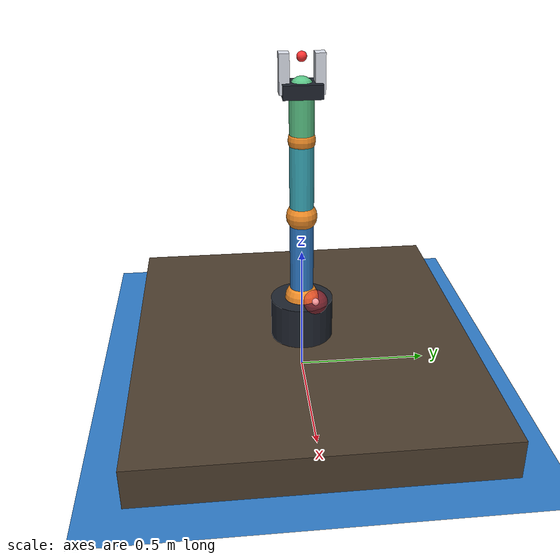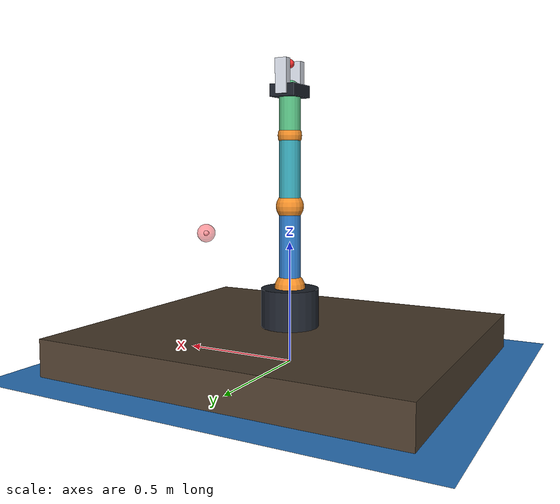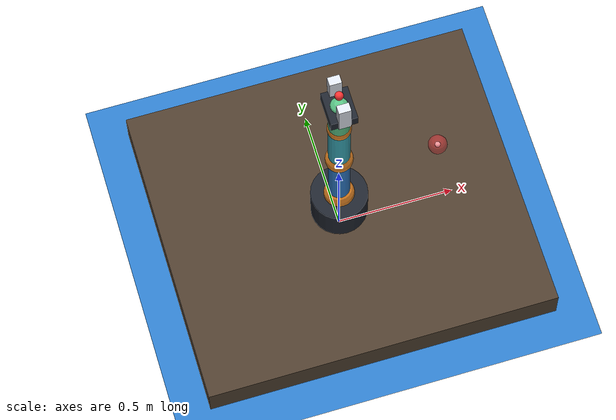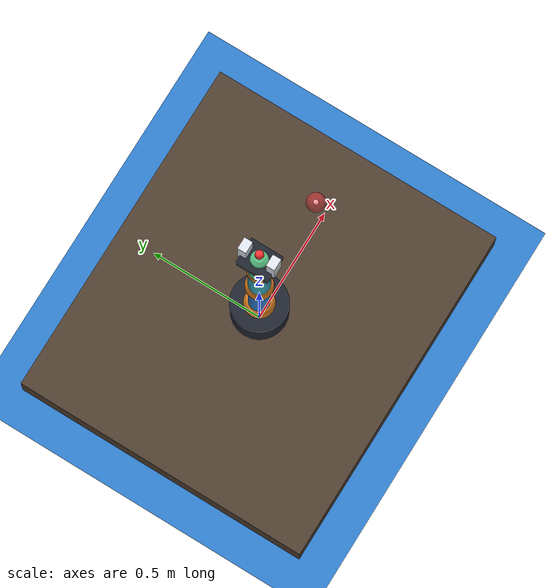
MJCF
<mujoco model="tabletop_robot_arm">
  <compiler angle="degree" autolimits="true"/>
  <option timestep="0.005" gravity="0 0 -9.81" integrator="implicitfast"/>

  <visual>
    <headlight ambient="0.35 0.35 0.35" diffuse="0.7 0.7 0.7" specular="0.3 0.3 0.3"/>
    <rgba haze="0.08 0.11 0.16 1"/>
    <global azimuth="135" elevation="-24"/>
  </visual>

  <default>
    <joint limited="true" damping="1" armature="0.03"/>
    <geom type="capsule" size="0.045" density="650" friction="0.8 0.1 0.1" rgba="0.18 0.48 0.78 1"/>
    <position kp="140" dampratio="1"/>
  </default>

  <asset>
    <texture name="floor_tex" type="2d" builtin="checker" width="256" height="256"
             rgb1="0.12 0.14 0.17" rgb2="0.18 0.21 0.25"/>
    <material name="floor_mat" texture="floor_tex" texrepeat="4 4" reflectance="0.15"/>
  </asset>

  <worldbody>
    <light pos="0 0 2.2" dir="0 0 -1" directional="true"/>
    <geom name="floor" type="plane" size="2 2 0.1" material="floor_mat"/>
    <geom name="table" type="box" pos="0 0 0.075" size="0.75 0.65 0.075"
          rgba="0.30 0.24 0.18 1" friction="1 0.1 0.1"/>

    <body name="pedestal" pos="0 0 0.15">
      <geom type="cylinder" size="0.12 0.08" pos="0 0 0.08" rgba="0.12 0.14 0.18 1"/>

      <body name="upper_arm" pos="0 0 0.16" gravcomp="1">
        <joint name="shoulder_yaw" type="hinge" axis="0 0 1" range="-180 180"/>
        <joint name="shoulder_pitch" type="hinge" axis="0 1 0" range="-80 100"/>
        <geom name="upper_link" fromto="0 0 0 0 0 0.34"/>
        <geom type="sphere" size="0.065" pos="0 0 0" rgba="0.95 0.56 0.16 1"/>

        <body name="forearm" pos="0 0 0.34" gravcomp="1">
          <joint name="elbow" type="hinge" axis="0 1 0" range="-145 145"/>
          <geom name="forearm_link" fromto="0 0 0 0 0 0.29" rgba="0.22 0.66 0.72 1"/>
          <geom type="sphere" size="0.058" pos="0 0 0" rgba="0.95 0.56 0.16 1"/>

          <body name="wrist_body" pos="0 0 0.29" gravcomp="1">
            <joint name="wrist" type="hinge" axis="0 1 0" range="-150 150"/>
            <geom name="wrist_link" fromto="0 0 0 0 0 0.18" rgba="0.35 0.76 0.52 1"/>
            <geom type="sphere" size="0.05" pos="0 0 0" rgba="0.95 0.56 0.16 1"/>

            <body name="gripper" pos="0 0 0.18" gravcomp="1">
              <geom name="palm" type="box" size="0.055 0.07 0.025" rgba="0.12 0.14 0.18 1"/>
              <geom name="left_finger" type="box" pos="0 0.062 0.055" size="0.025 0.018 0.07"
                    rgba="0.86 0.88 0.92 1"/>
              <geom name="right_finger" type="box" pos="0 -0.062 0.055" size="0.025 0.018 0.07"
                    rgba="0.86 0.88 0.92 1"/>
              <site name="end_effector" pos="0 0 0.11" size="0.018" rgba="1 0.2 0.2 1"/>
            </body>
          </body>
        </body>
      </body>
    </body>

    <body name="target" mocap="true" pos="0.42 0 0.52">
      <geom name="target_marker" type="sphere" size="0.04" rgba="1 0.18 0.22 0.45"
            contype="0" conaffinity="0"/>
      <site name="target_center" size="0.012" rgba="1 1 1 1"/>
    </body>
  </worldbody>

  <contact>
    <!-- Neighboring bodies meet at their joints and should not block planning. -->
    <exclude body1="pedestal" body2="upper_arm"/>
    <exclude body1="upper_arm" body2="forearm"/>
    <exclude body1="forearm" body2="wrist_body"/>
    <exclude body1="wrist_body" body2="gripper"/>
  </contact>

  <actuator>
    <position name="shoulder_yaw_motor" joint="shoulder_yaw" ctrlrange="-3.142 3.142"/>
    <position name="shoulder_pitch_motor" joint="shoulder_pitch" ctrlrange="-1.396 1.745"/>
    <position name="elbow_motor" joint="elbow" ctrlrange="-2.531 2.531"/>
    <position name="wrist_motor" joint="wrist" ctrlrange="-2.618 2.618"/>
  </actuator>
</mujoco>
